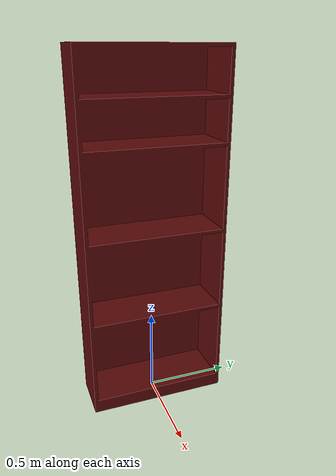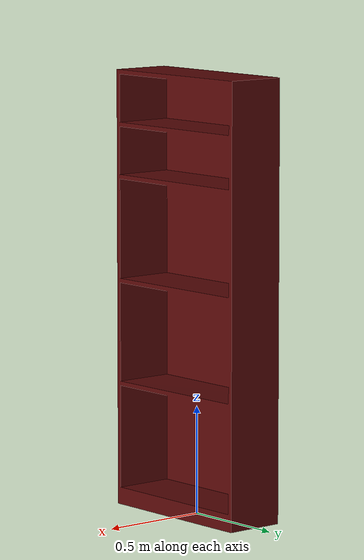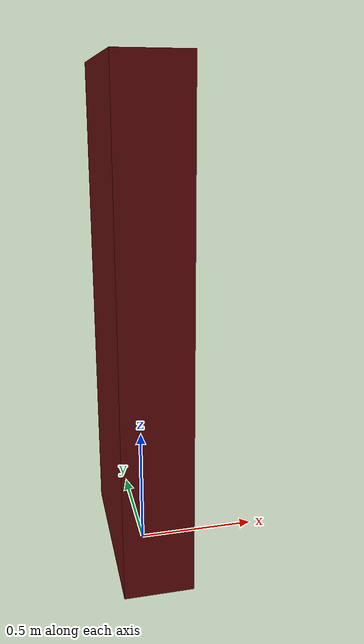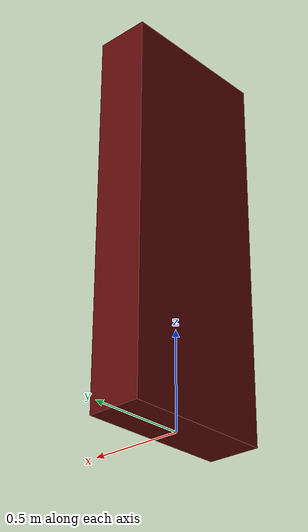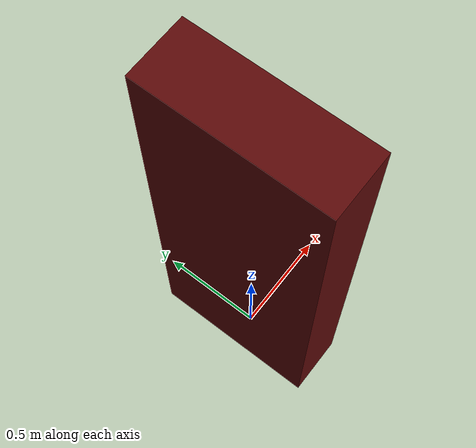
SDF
<?xml version="1.0" ?>
<sdf version="1.6">
    <model name="clf_shelf_old">
        <static>true</static>
        <link name="link">
            <collision name="collision">
                <geometry>
                    <mesh>
                        <uri>model://clf_shelf_old/meshes/clf_shelf.obj</uri>
                    </mesh>
                </geometry>
            </collision>
            <visual name="visual">
                <material>
                    <ambient>0.36 0.035 0.035 1.0</ambient>
                    <diffuse>0.36 0.035 0.035 1.0</diffuse>
                    <specular>0 0 0 0</specular>
                    <emissive>0 0 0 1</emissive>
                </material>
                <geometry>
                    <mesh>
                        <uri>model://clf_shelf_old/meshes/clf_shelf.obj</uri>
                    </mesh>
                </geometry>
            </visual>
        </link>
    </model>
</sdf>
